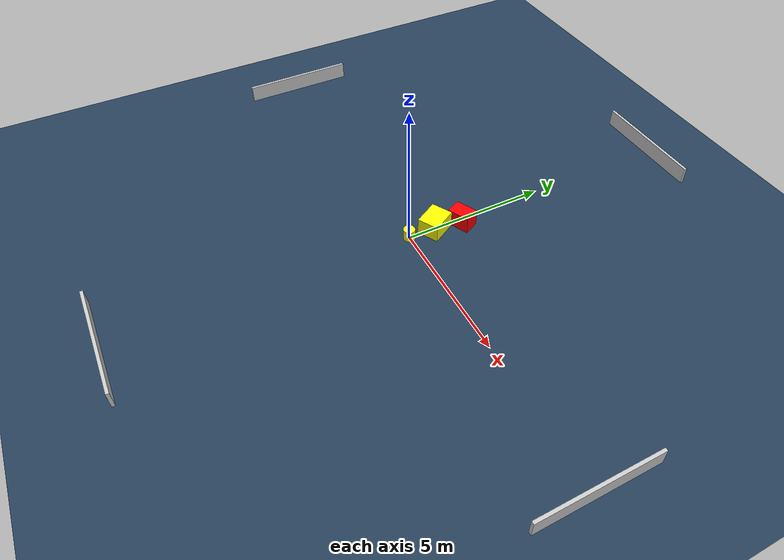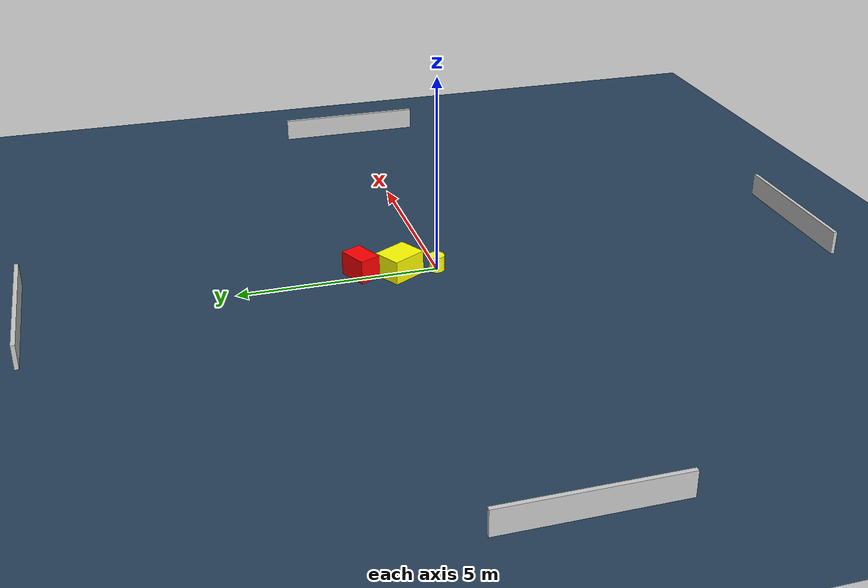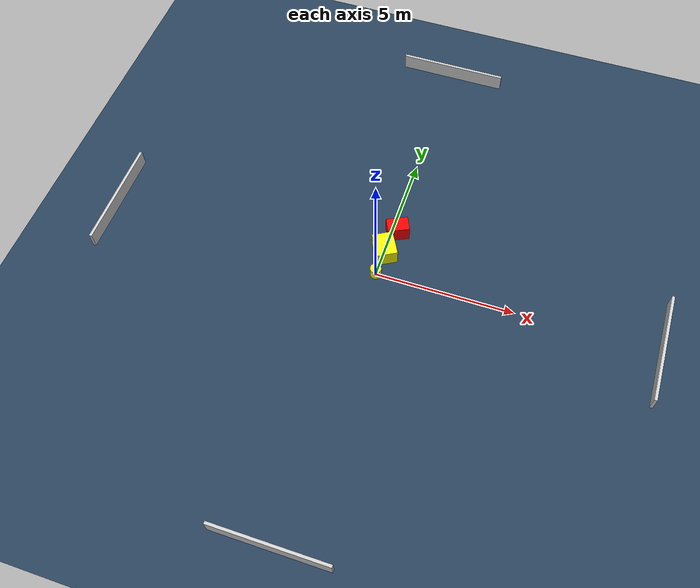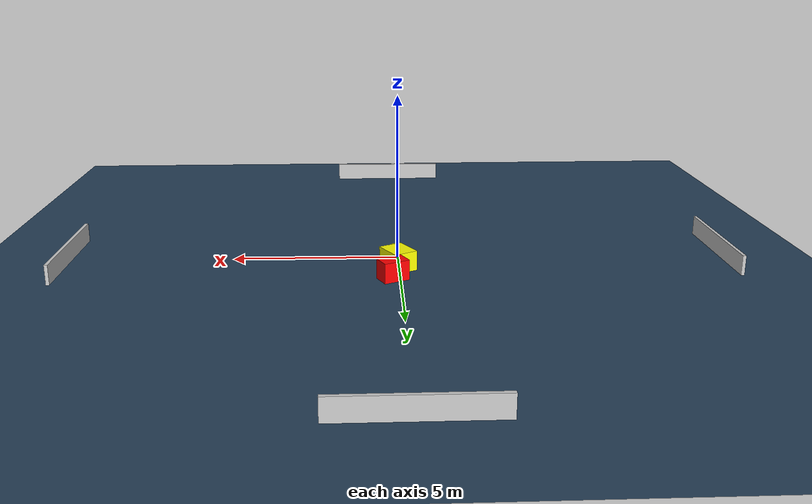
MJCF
<?xml version="1.0" ?>
<mujoco model="generated_environment">
  <option timestep="0.01" integrator="RK4" cone="elliptic"/>
  <default>
    <geom density="1"/>
  </default>
  <asset>
    <texture builtin="gradient" height="3072" name="skybox" rgb1="0.3 0.5 0.7" rgb2="0 0 0" type="skybox" width="512"/>
    <texture builtin="checker" height="300" name="groundplane" rgb1="0.2 0.3 0.4" rgb2="0.1 0.2 0.3" type="2d" width="300"/>
    <material name="groundplane" reflectance="0.2" texrepeat="5 5" texture="groundplane"/>
  </asset>
  <worldbody>
    <light dir="0 0 -1" directional="true" pos="0 0 1.5"/>
    <geom condim="3" friction="0.5 0.005 0.001" material="groundplane" name="floor" pos="0 0 0" size="0 0 0.05" type="plane"/>
    <body name="walls">
      <geom name="wall_1" condim="4" pos="-10.0 0.0 0.3" rgba="0.800000011920929 0.800000011920929 0.800000011920929 1.0" size="0.05 2.0 0.3" type="box"/>
      <geom name="wall_2" condim="4" pos="10.0 0.0 0.3" rgba="0.800000011920929 0.800000011920929 0.800000011920929 1.0" size="0.05 2.0 0.3" type="box"/>
      <geom name="wall_3" condim="4" pos="0.0 -10.0 0.3" rgba="0.800000011920929 0.800000011920929 0.800000011920929 1.0" size="2.0 0.05 0.3" type="box"/>
      <geom name="wall_4" condim="4" pos="0.0 10.0 0.3" rgba="0.800000011920929 0.800000011920929 0.800000011920929 1.0" size="2.0 0.05 0.3" type="box"/>
    </body>
    <body name="robot">
      <joint name="joint_x" type="slide" pos="0 0 0" axis="1 0 0"/>
      <joint name="joint_y" type="slide" pos="0 0 0" axis="0 1 0"/>
      <geom name="robot" type="cylinder" pos="0.0 0.0 0.2" size="0.2 0.2 0.0" mass="5.0" friction="1.0 0.005 0.0001" condim="4" rgba="1.0 1.0 0.0 1.0"/>
    </body>
    <body name="obstacle_1_movable">
      <geom name="obstacle_1_movable" condim="4" pos="0.021263634065191335 0.9520047093677836 0.3" euler="0 0 119.37600347671165" friction="0.0 0.005 0.001" rgba="1.0 1.0 0.0 1.0" size="0.45805567080026743 0.3736900753480398 0.3" type="box" mass="0.1"/>
      <joint type="free"/>
    </body>
    <body name="obstacle_2_static">
      <geom name="obstacle_2_static" condim="4" pos="0.20694573926338186 1.8948313067878366 0.3" euler="0 0 25.522671727374856" friction="0.0 0.005 0.001" rgba="1.0 0.0 0.0 1.0" size="0.3927193601145287 0.27195048989915926 0.3" type="box"/>
    </body>
  </worldbody>
  <actuator>
    <motor name="actuator_x" joint="joint_x" gear="1" ctrlrange="-1 1"/>
    <motor name="actuator_y" joint="joint_y" gear="1" ctrlrange="-1 1"/>
  </actuator>
</mujoco>
